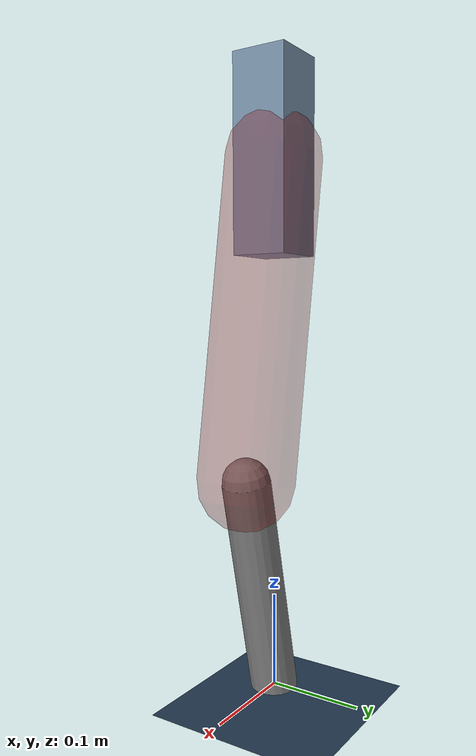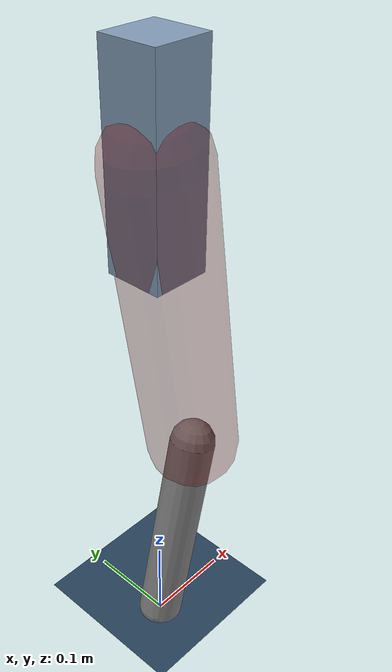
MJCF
<mujoco model="Hopper2D">
	<compiler inertiafromgeom="true" angle="radian" />
	<option timestep="0.001" integrator="implicit" cone="elliptic" solver="Newton" tolerance="1e-10" />

	<default>
		<geom contype="1" conaffinity="1" condim="3" friction="2 0.005 0.0001" solref="0.005 1" />
		<joint limited="true" damping="0.1" />
	</default>

	<asset>
		<texture name="skybox" type="skybox" builtin="gradient" rgb1=".4 .6 .8" rgb2="0 0 0" width="800" height="800" />
		<texture name="grid" type="2d" builtin="checker" rgb1=".1 .2 .3" rgb2=".2 .3 .4" width="300" height="300" mark="edge" markrgb=".2 .3 .4" />
		<material name="ground" texture="grid" texrepeat="1 1" texuniform="true" reflectance="0.1" />
		<material name="leg" rgba="0.5 0.6 0.7 1" />
	</asset>

	<worldbody>

		<geom name="floor" type="plane" size="5 5 0.25" material="ground" />

		<light directional="false" diffuse="0.8 0.8 0.8" specular="0.3 0.3 0.3" pos="0 0 2" dir="0 0 -1" />
		<light mode="targetbodycom" target="base" directional="false" diffuse="0.8 0.8 0.8" specular="0.3 0.3 0.3" pos="0 0 2" dir="0 0 -1" />

		<camera name="fixed" pos="0 -2 1" xyaxes="1 0 0 0 0 1" />
		<camera name="tracking" mode="trackcom" pos="0 -3 1" />

		<body name="root" pos="0 0 0.5627180590264833">
			<joint name="slide_x" type="slide" axis="1 0 0" range="-100 100" />
			<joint name="slide_z" type="slide" axis="0 0 1" range="0 10" />

			<body name="base" pos="0 0 0">
				<geom name="torso" type="box" size="0.03 0.03 0.1" mass="3.255" material="leg" />

				<body name="link1" pos="0 0 0" euler="0 1.4121304876308272 0">
					<joint type="hinge" axis="0 -1 0" pos="0 0 0" name="hinge1" limited="true" range="-3.14 3.14" stiffness="0" damping="0.1" />
					<geom name="thigh" type="capsule" fromto="0 0 0 0.33261500800451343 0 0" size="0.05" rgba="0.5 0 0 0.3" mass="1.0781220224126375" />

					<body name="link2" pos="0.33261500800451343 0 0" euler="0 0.37933117562411145 0">
						<joint type="hinge" axis="0 -1 0" pos="0 0 0" name="hinge2" limited="true" range="-3.14 3.14" stiffness="0" damping="0.1" />
						<geom name="shank" type="capsule" fromto="0 0 0 0.24010305102196994 0 0" size="0.025" mass="0.434382440817576" />

					</body>
				</body>
			</body>
		</body>
	</worldbody>

	<actuator>
		<motor name="torque1" joint="hinge1" ctrlrange="-103.38423495243138 103.38423495243138" ctrllimited="true" gear="1" />
		<motor name="torque2" joint="hinge2" ctrlrange="-126.6945502339784 126.6945502339784" ctrllimited="true" gear="1" />
	</actuator>
</mujoco>
